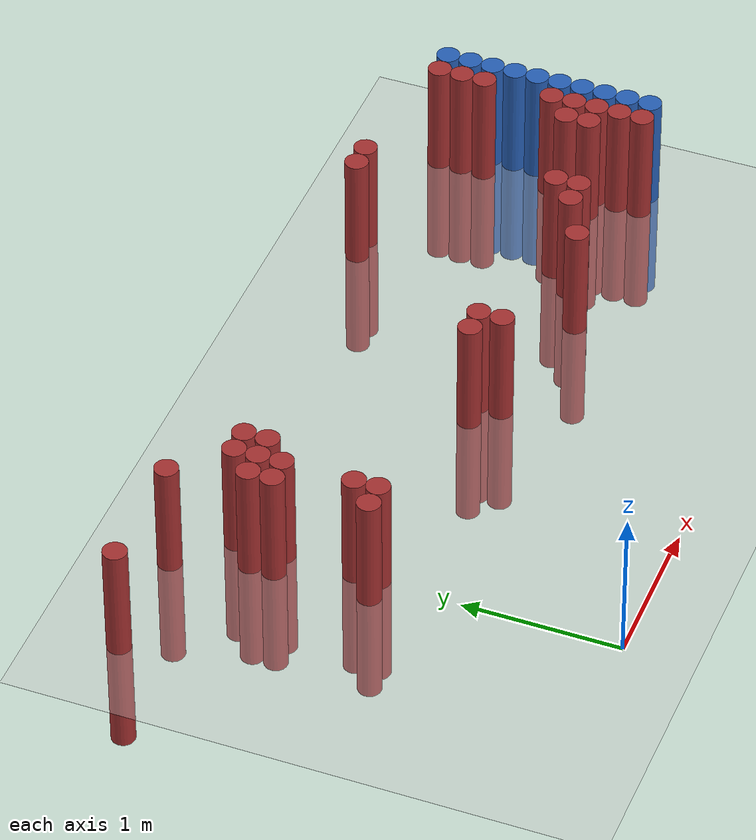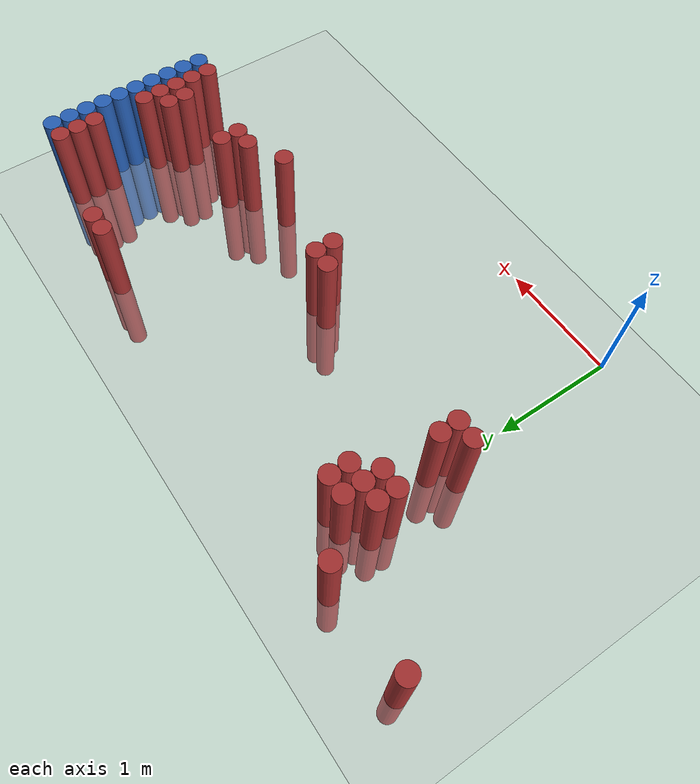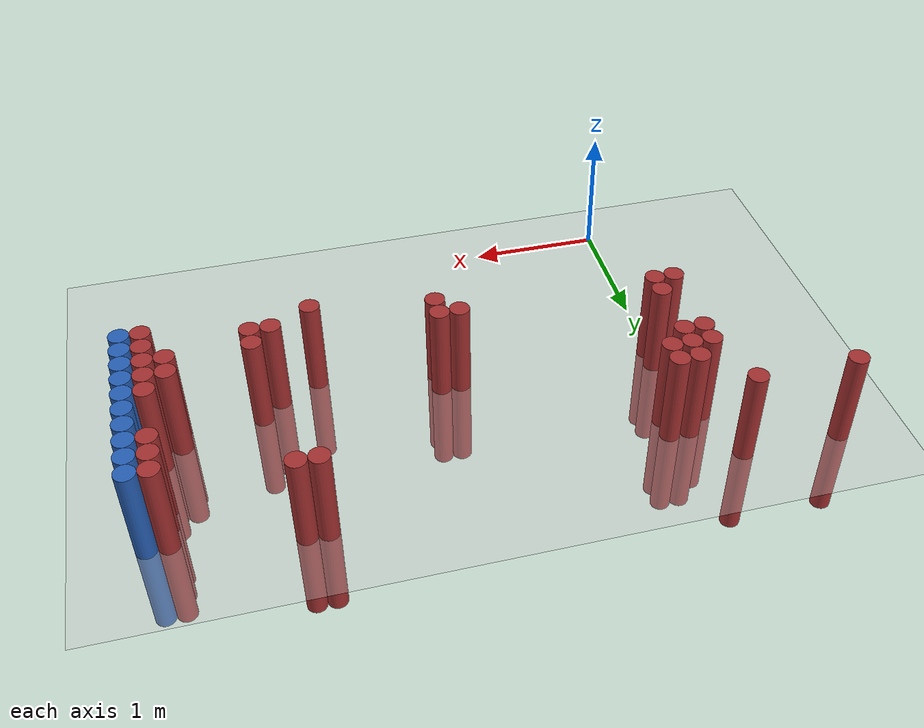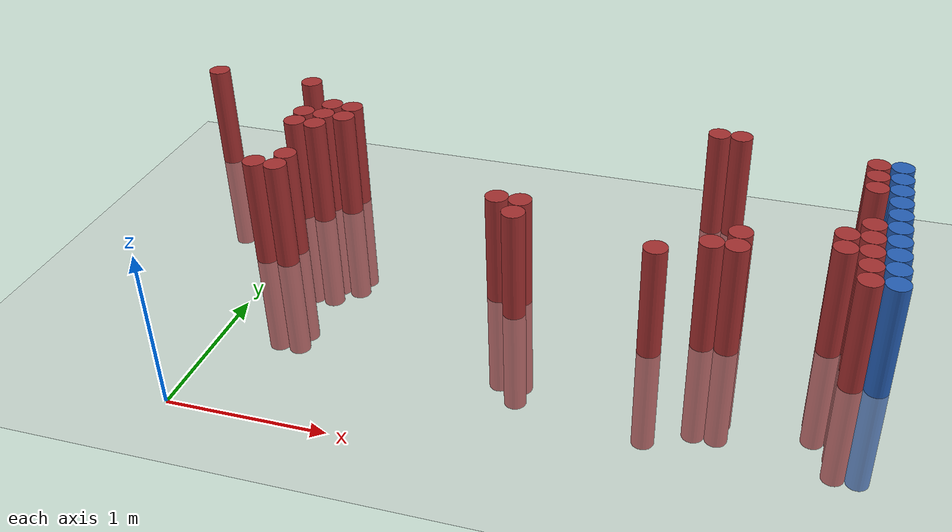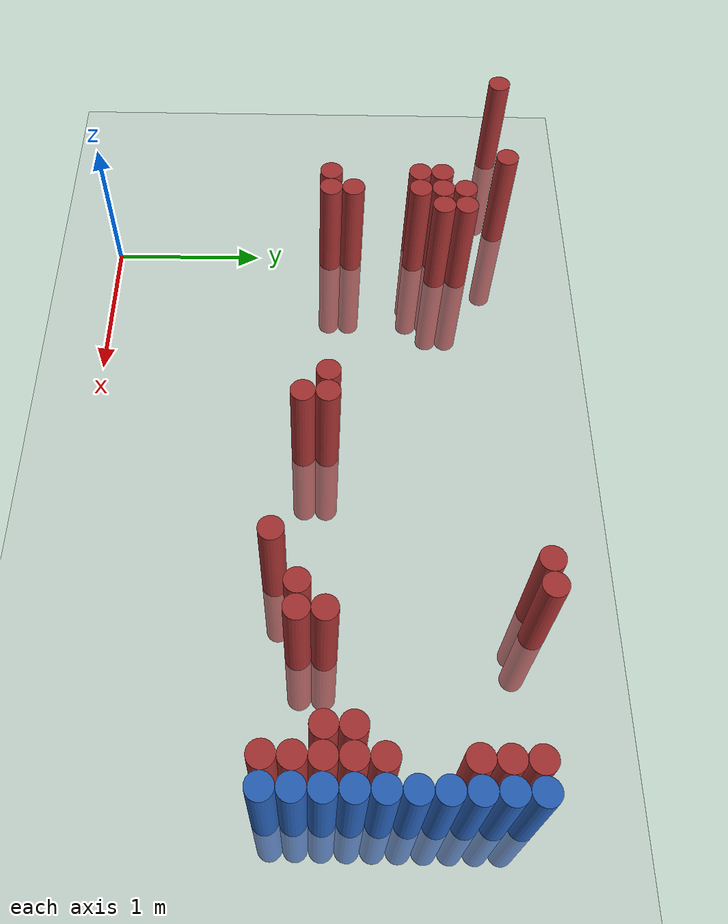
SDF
<sdf version="1.6">
 <world name="default">
  <model name="ground_plane">
   <static>1</static>
   <link name="link">
    <collision name="collision">
     <geometry><plane><normal>0 0 1</normal><size>100 100</size></plane></geometry>
     <surface><friction><ode><mu>100</mu><mu2>50</mu2></ode></friction></surface>
    </collision>
    <visual name="visual">
     <cast_shadows>0</cast_shadows>
     <geometry><plane><normal>0 0 1</normal><size>100 100</size></plane></geometry>
     <material>
      <script><uri>file://media/materials/scripts/gazebo.material</uri><name>Gazebo/Grey</name></script>
     </material>
    </visual>
   </link>
  </model>
  <model name="unit_cylinder_132">
   <static>1</static>
   <pose>3.925000 1.375000 0.000000 0.000000 0.000000 0.000000</pose>
   <link name="link">
    <inertial>
     <mass>1</mass>
     <inertia><ixx>0.145833</ixx><ixy>0</ixy><ixz>0</ixz><iyy>0.145833</iyy><iyz>0</iyz><izz>0.125</izz></inertia>
    </inertial>
    <collision name="collision">
     <geometry><cylinder><radius>0.075000</radius><length>1.5</length></cylinder></geometry>
    </collision>
    <visual name="visual">
     <geometry><cylinder><radius>0.075000</radius><length>1.5</length></cylinder></geometry>
     <material>
      <ambient>0.152000 0.379000 0.720000 1</ambient>
      <diffuse>0.152000 0.379000 0.720000 1</diffuse>
     </material>
     <material>
      <script><name>Gazebo/Grey</name><uri>file://media/materials/scripts/gazebo.material</uri></script>
     </material>
    </visual>
   </link>
  </model>
  <model name="unit_cylinder_134">
   <static>1</static>
   <pose>3.925000 1.525000 0.000000 0.000000 0.000000 0.000000</pose>
   <link name="link">
    <inertial>
     <mass>1</mass>
     <inertia><ixx>0.145833</ixx><ixy>0</ixy><ixz>0</ixz><iyy>0.145833</iyy><iyz>0</iyz><izz>0.125</izz></inertia>
    </inertial>
    <collision name="collision">
     <geometry><cylinder><radius>0.075000</radius><length>1.5</length></cylinder></geometry>
    </collision>
    <visual name="visual">
     <geometry><cylinder><radius>0.075000</radius><length>1.5</length></cylinder></geometry>
     <material>
      <ambient>0.152000 0.379000 0.720000 1</ambient>
      <diffuse>0.152000 0.379000 0.720000 1</diffuse>
     </material>
     <material>
      <script><name>Gazebo/Grey</name><uri>file://media/materials/scripts/gazebo.material</uri></script>
     </material>
    </visual>
   </link>
  </model>
  <model name="unit_cylinder_136">
   <static>1</static>
   <pose>3.925000 1.675000 0.000000 0.000000 0.000000 0.000000</pose>
   <link name="link">
    <inertial>
     <mass>1</mass>
     <inertia><ixx>0.145833</ixx><ixy>0</ixy><ixz>0</ixz><iyy>0.145833</iyy><iyz>0</iyz><izz>0.125</izz></inertia>
    </inertial>
    <collision name="collision">
     <geometry><cylinder><radius>0.075000</radius><length>1.5</length></cylinder></geometry>
    </collision>
    <visual name="visual">
     <geometry><cylinder><radius>0.075000</radius><length>1.5</length></cylinder></geometry>
     <material>
      <ambient>0.152000 0.379000 0.720000 1</ambient>
      <diffuse>0.152000 0.379000 0.720000 1</diffuse>
     </material>
     <material>
      <script><name>Gazebo/Grey</name><uri>file://media/materials/scripts/gazebo.material</uri></script>
     </material>
    </visual>
   </link>
  </model>
  <model name="unit_cylinder_138">
   <static>1</static>
   <pose>3.925000 1.825000 0.000000 0.000000 0.000000 0.000000</pose>
   <link name="link">
    <inertial>
     <mass>1</mass>
     <inertia><ixx>0.145833</ixx><ixy>0</ixy><ixz>0</ixz><iyy>0.145833</iyy><iyz>0</iyz><izz>0.125</izz></inertia>
    </inertial>
    <collision name="collision">
     <geometry><cylinder><radius>0.075000</radius><length>1.5</length></cylinder></geometry>
    </collision>
    <visual name="visual">
     <geometry><cylinder><radius>0.075000</radius><length>1.5</length></cylinder></geometry>
     <material>
      <ambient>0.152000 0.379000 0.720000 1</ambient>
      <diffuse>0.152000 0.379000 0.720000 1</diffuse>
     </material>
     <material>
      <script><name>Gazebo/Grey</name><uri>file://media/materials/scripts/gazebo.material</uri></script>
     </material>
    </visual>
   </link>
  </model>
  <model name="unit_cylinder_140">
   <static>1</static>
   <pose>3.925000 1.975000 0.000000 0.000000 0.000000 0.000000</pose>
   <link name="link">
    <inertial>
     <mass>1</mass>
     <inertia><ixx>0.145833</ixx><ixy>0</ixy><ixz>0</ixz><iyy>0.145833</iyy><iyz>0</iyz><izz>0.125</izz></inertia>
    </inertial>
    <collision name="collision">
     <geometry><cylinder><radius>0.075000</radius><length>1.5</length></cylinder></geometry>
    </collision>
    <visual name="visual">
     <geometry><cylinder><radius>0.075000</radius><length>1.5</length></cylinder></geometry>
     <material>
      <ambient>0.152000 0.379000 0.720000 1</ambient>
      <diffuse>0.152000 0.379000 0.720000 1</diffuse>
     </material>
     <material>
      <script><name>Gazebo/Grey</name><uri>file://media/materials/scripts/gazebo.material</uri></script>
     </material>
    </visual>
   </link>
  </model>
  <model name="unit_cylinder_142">
   <static>1</static>
   <pose>3.925000 2.125000 0.000000 0.000000 0.000000 0.000000</pose>
   <link name="link">
    <inertial>
     <mass>1</mass>
     <inertia><ixx>0.145833</ixx><ixy>0</ixy><ixz>0</ixz><iyy>0.145833</iyy><iyz>0</iyz><izz>0.125</izz></inertia>
    </inertial>
    <collision name="collision">
     <geometry><cylinder><radius>0.075000</radius><length>1.5</length></cylinder></geometry>
    </collision>
    <visual name="visual">
     <geometry><cylinder><radius>0.075000</radius><length>1.5</length></cylinder></geometry>
     <material>
      <ambient>0.152000 0.379000 0.720000 1</ambient>
      <diffuse>0.152000 0.379000 0.720000 1</diffuse>
     </material>
     <material>
      <script><name>Gazebo/Grey</name><uri>file://media/materials/scripts/gazebo.material</uri></script>
     </material>
    </visual>
   </link>
  </model>
  <model name="unit_cylinder_144">
   <static>1</static>
   <pose>3.925000 2.275000 0.000000 0.000000 0.000000 0.000000</pose>
   <link name="link">
    <inertial>
     <mass>1</mass>
     <inertia><ixx>0.145833</ixx><ixy>0</ixy><ixz>0</ixz><iyy>0.145833</iyy><iyz>0</iyz><izz>0.125</izz></inertia>
    </inertial>
    <collision name="collision">
     <geometry><cylinder><radius>0.075000</radius><length>1.5</length></cylinder></geometry>
    </collision>
    <visual name="visual">
     <geometry><cylinder><radius>0.075000</radius><length>1.5</length></cylinder></geometry>
     <material>
      <ambient>0.152000 0.379000 0.720000 1</ambient>
      <diffuse>0.152000 0.379000 0.720000 1</diffuse>
     </material>
     <material>
      <script><name>Gazebo/Grey</name><uri>file://media/materials/scripts/gazebo.material</uri></script>
     </material>
    </visual>
   </link>
  </model>
  <model name="unit_cylinder_146">
   <static>1</static>
   <pose>3.925000 2.425000 0.000000 0.000000 0.000000 0.000000</pose>
   <link name="link">
    <inertial>
     <mass>1</mass>
     <inertia><ixx>0.145833</ixx><ixy>0</ixy><ixz>0</ixz><iyy>0.145833</iyy><iyz>0</iyz><izz>0.125</izz></inertia>
    </inertial>
    <collision name="collision">
     <geometry><cylinder><radius>0.075000</radius><length>1.5</length></cylinder></geometry>
    </collision>
    <visual name="visual">
     <geometry><cylinder><radius>0.075000</radius><length>1.5</length></cylinder></geometry>
     <material>
      <ambient>0.152000 0.379000 0.720000 1</ambient>
      <diffuse>0.152000 0.379000 0.720000 1</diffuse>
     </material>
     <material>
      <script><name>Gazebo/Grey</name><uri>file://media/materials/scripts/gazebo.material</uri></script>
     </material>
    </visual>
   </link>
  </model>
  <model name="unit_cylinder_148">
   <static>1</static>
   <pose>3.925000 2.575000 0.000000 0.000000 0.000000 0.000000</pose>
   <link name="link">
    <inertial>
     <mass>1</mass>
     <inertia><ixx>0.145833</ixx><ixy>0</ixy><ixz>0</ixz><iyy>0.145833</iyy><iyz>0</iyz><izz>0.125</izz></inertia>
    </inertial>
    <collision name="collision">
     <geometry><cylinder><radius>0.075000</radius><length>1.5</length></cylinder></geometry>
    </collision>
    <visual name="visual">
     <geometry><cylinder><radius>0.075000</radius><length>1.5</length></cylinder></geometry>
     <material>
      <ambient>0.152000 0.379000 0.720000 1</ambient>
      <diffuse>0.152000 0.379000 0.720000 1</diffuse>
     </material>
     <material>
      <script><name>Gazebo/Grey</name><uri>file://media/materials/scripts/gazebo.material</uri></script>
     </material>
    </visual>
   </link>
  </model>
  <model name="unit_cylinder_325">
   <static>1</static>
   <pose>-1.025000 2.725000 0.000000 0.000000 0.000000 0.000000</pose>
   <link name="link">
    <inertial>
     <mass>1</mass>
     <inertia><ixx>0.145833</ixx><ixy>0</ixy><ixz>0</ixz><iyy>0.145833</iyy><iyz>0</iyz><izz>0.125</izz></inertia>
    </inertial>
    <collision name="collision">
     <geometry><cylinder><radius>0.075000</radius><length>1.5</length></cylinder></geometry>
    </collision>
    <visual name="visual">
     <geometry><cylinder><radius>0.075000</radius><length>1.5</length></cylinder></geometry>
     <material>
      <ambient>0.648000 0.192000 0.192000 1</ambient>
      <diffuse>0.648000 0.192000 0.192000 1</diffuse>
     </material>
     <material>
      <script><name>Gazebo/Grey</name><uri>file://media/materials/scripts/gazebo.material</uri></script>
     </material>
    </visual>
   </link>
  </model>
  <model name="unit_cylinder_334">
   <static>1</static>
   <pose>-0.275000 2.725000 0.000000 0.000000 0.000000 0.000000</pose>
   <link name="link">
    <inertial>
     <mass>1</mass>
     <inertia><ixx>0.145833</ixx><ixy>0</ixy><ixz>0</ixz><iyy>0.145833</iyy><iyz>0</iyz><izz>0.125</izz></inertia>
    </inertial>
    <collision name="collision">
     <geometry><cylinder><radius>0.075000</radius><length>1.5</length></cylinder></geometry>
    </collision>
    <visual name="visual">
     <geometry><cylinder><radius>0.075000</radius><length>1.5</length></cylinder></geometry>
     <material>
      <ambient>0.648000 0.192000 0.192000 1</ambient>
      <diffuse>0.648000 0.192000 0.192000 1</diffuse>
     </material>
     <material>
      <script><name>Gazebo/Grey</name><uri>file://media/materials/scripts/gazebo.material</uri></script>
     </material>
    </visual>
   </link>
  </model>
  <model name="unit_cylinder_342">
   <static>1</static>
   <pose>-0.125000 1.525000 0.000000 0.000000 0.000000 0.000000</pose>
   <link name="link">
    <inertial>
     <mass>1</mass>
     <inertia><ixx>0.145833</ixx><ixy>0</ixy><ixz>0</ixz><iyy>0.145833</iyy><iyz>0</iyz><izz>0.125</izz></inertia>
    </inertial>
    <collision name="collision">
     <geometry><cylinder><radius>0.075000</radius><length>1.5</length></cylinder></geometry>
    </collision>
    <visual name="visual">
     <geometry><cylinder><radius>0.075000</radius><length>1.5</length></cylinder></geometry>
     <material>
      <ambient>0.648000 0.192000 0.192000 1</ambient>
      <diffuse>0.648000 0.192000 0.192000 1</diffuse>
     </material>
     <material>
      <script><name>Gazebo/Grey</name><uri>file://media/materials/scripts/gazebo.material</uri></script>
     </material>
    </visual>
   </link>
  </model>
  <model name="unit_cylinder_343">
   <static>1</static>
   <pose>-0.125000 2.125000 0.000000 0.000000 0.000000 0.000000</pose>
   <link name="link">
    <inertial>
     <mass>1</mass>
     <inertia><ixx>0.145833</ixx><ixy>0</ixy><ixz>0</ixz><iyy>0.145833</iyy><iyz>0</iyz><izz>0.125</izz></inertia>
    </inertial>
    <collision name="collision">
     <geometry><cylinder><radius>0.075000</radius><length>1.5</length></cylinder></geometry>
    </collision>
    <visual name="visual">
     <geometry><cylinder><radius>0.075000</radius><length>1.5</length></cylinder></geometry>
     <material>
      <ambient>0.648000 0.192000 0.192000 1</ambient>
      <diffuse>0.648000 0.192000 0.192000 1</diffuse>
     </material>
     <material>
      <script><name>Gazebo/Grey</name><uri>file://media/materials/scripts/gazebo.material</uri></script>
     </material>
    </visual>
   </link>
  </model>
  <model name="unit_cylinder_344">
   <static>1</static>
   <pose>-0.125000 2.275000 0.000000 0.000000 0.000000 0.000000</pose>
   <link name="link">
    <inertial>
     <mass>1</mass>
     <inertia><ixx>0.145833</ixx><ixy>0</ixy><ixz>0</ixz><iyy>0.145833</iyy><iyz>0</iyz><izz>0.125</izz></inertia>
    </inertial>
    <collision name="collision">
     <geometry><cylinder><radius>0.075000</radius><length>1.5</length></cylinder></geometry>
    </collision>
    <visual name="visual">
     <geometry><cylinder><radius>0.075000</radius><length>1.5</length></cylinder></geometry>
     <material>
      <ambient>0.648000 0.192000 0.192000 1</ambient>
      <diffuse>0.648000 0.192000 0.192000 1</diffuse>
     </material>
     <material>
      <script><name>Gazebo/Grey</name><uri>file://media/materials/scripts/gazebo.material</uri></script>
     </material>
    </visual>
   </link>
  </model>
  <model name="unit_cylinder_350">
   <static>1</static>
   <pose>0.025000 1.525000 0.000000 0.000000 0.000000 0.000000</pose>
   <link name="link">
    <inertial>
     <mass>1</mass>
     <inertia><ixx>0.145833</ixx><ixy>0</ixy><ixz>0</ixz><iyy>0.145833</iyy><iyz>0</iyz><izz>0.125</izz></inertia>
    </inertial>
    <collision name="collision">
     <geometry><cylinder><radius>0.075000</radius><length>1.5</length></cylinder></geometry>
    </collision>
    <visual name="visual">
     <geometry><cylinder><radius>0.075000</radius><length>1.5</length></cylinder></geometry>
     <material>
      <ambient>0.648000 0.192000 0.192000 1</ambient>
      <diffuse>0.648000 0.192000 0.192000 1</diffuse>
     </material>
     <material>
      <script><name>Gazebo/Grey</name><uri>file://media/materials/scripts/gazebo.material</uri></script>
     </material>
    </visual>
   </link>
  </model>
  <model name="unit_cylinder_351">
   <static>1</static>
   <pose>0.025000 1.675000 0.000000 0.000000 0.000000 0.000000</pose>
   <link name="link">
    <inertial>
     <mass>1</mass>
     <inertia><ixx>0.145833</ixx><ixy>0</ixy><ixz>0</ixz><iyy>0.145833</iyy><iyz>0</iyz><izz>0.125</izz></inertia>
    </inertial>
    <collision name="collision">
     <geometry><cylinder><radius>0.075000</radius><length>1.5</length></cylinder></geometry>
    </collision>
    <visual name="visual">
     <geometry><cylinder><radius>0.075000</radius><length>1.5</length></cylinder></geometry>
     <material>
      <ambient>0.648000 0.192000 0.192000 1</ambient>
      <diffuse>0.648000 0.192000 0.192000 1</diffuse>
     </material>
     <material>
      <script><name>Gazebo/Grey</name><uri>file://media/materials/scripts/gazebo.material</uri></script>
     </material>
    </visual>
   </link>
  </model>
  <model name="unit_cylinder_352">
   <static>1</static>
   <pose>0.025000 2.125000 0.000000 0.000000 0.000000 0.000000</pose>
   <link name="link">
    <inertial>
     <mass>1</mass>
     <inertia><ixx>0.145833</ixx><ixy>0</ixy><ixz>0</ixz><iyy>0.145833</iyy><iyz>0</iyz><izz>0.125</izz></inertia>
    </inertial>
    <collision name="collision">
     <geometry><cylinder><radius>0.075000</radius><length>1.5</length></cylinder></geometry>
    </collision>
    <visual name="visual">
     <geometry><cylinder><radius>0.075000</radius><length>1.5</length></cylinder></geometry>
     <material>
      <ambient>0.648000 0.192000 0.192000 1</ambient>
      <diffuse>0.648000 0.192000 0.192000 1</diffuse>
     </material>
     <material>
      <script><name>Gazebo/Grey</name><uri>file://media/materials/scripts/gazebo.material</uri></script>
     </material>
    </visual>
   </link>
  </model>
  <model name="unit_cylinder_353">
   <static>1</static>
   <pose>0.025000 2.275000 0.000000 0.000000 0.000000 0.000000</pose>
   <link name="link">
    <inertial>
     <mass>1</mass>
     <inertia><ixx>0.145833</ixx><ixy>0</ixy><ixz>0</ixz><iyy>0.145833</iyy><iyz>0</iyz><izz>0.125</izz></inertia>
    </inertial>
    <collision name="collision">
     <geometry><cylinder><radius>0.075000</radius><length>1.5</length></cylinder></geometry>
    </collision>
    <visual name="visual">
     <geometry><cylinder><radius>0.075000</radius><length>1.5</length></cylinder></geometry>
     <material>
      <ambient>0.648000 0.192000 0.192000 1</ambient>
      <diffuse>0.648000 0.192000 0.192000 1</diffuse>
     </material>
     <material>
      <script><name>Gazebo/Grey</name><uri>file://media/materials/scripts/gazebo.material</uri></script>
     </material>
    </visual>
   </link>
  </model>
  <model name="unit_cylinder_354">
   <static>1</static>
   <pose>0.025000 2.425000 0.000000 0.000000 0.000000 0.000000</pose>
   <link name="link">
    <inertial>
     <mass>1</mass>
     <inertia><ixx>0.145833</ixx><ixy>0</ixy><ixz>0</ixz><iyy>0.145833</iyy><iyz>0</iyz><izz>0.125</izz></inertia>
    </inertial>
    <collision name="collision">
     <geometry><cylinder><radius>0.075000</radius><length>1.5</length></cylinder></geometry>
    </collision>
    <visual name="visual">
     <geometry><cylinder><radius>0.075000</radius><length>1.5</length></cylinder></geometry>
     <material>
      <ambient>0.648000 0.192000 0.192000 1</ambient>
      <diffuse>0.648000 0.192000 0.192000 1</diffuse>
     </material>
     <material>
      <script><name>Gazebo/Grey</name><uri>file://media/materials/scripts/gazebo.material</uri></script>
     </material>
    </visual>
   </link>
  </model>
  <model name="unit_cylinder_356">
   <static>1</static>
   <pose>0.175000 2.275000 0.000000 0.000000 0.000000 0.000000</pose>
   <link name="link">
    <inertial>
     <mass>1</mass>
     <inertia><ixx>0.145833</ixx><ixy>0</ixy><ixz>0</ixz><iyy>0.145833</iyy><iyz>0</iyz><izz>0.125</izz></inertia>
    </inertial>
    <collision name="collision">
     <geometry><cylinder><radius>0.075000</radius><length>1.5</length></cylinder></geometry>
    </collision>
    <visual name="visual">
     <geometry><cylinder><radius>0.075000</radius><length>1.5</length></cylinder></geometry>
     <material>
      <ambient>0.648000 0.192000 0.192000 1</ambient>
      <diffuse>0.648000 0.192000 0.192000 1</diffuse>
     </material>
     <material>
      <script><name>Gazebo/Grey</name><uri>file://media/materials/scripts/gazebo.material</uri></script>
     </material>
    </visual>
   </link>
  </model>
  <model name="unit_cylinder_357">
   <static>1</static>
   <pose>0.175000 2.425000 0.000000 0.000000 0.000000 0.000000</pose>
   <link name="link">
    <inertial>
     <mass>1</mass>
     <inertia><ixx>0.145833</ixx><ixy>0</ixy><ixz>0</ixz><iyy>0.145833</iyy><iyz>0</iyz><izz>0.125</izz></inertia>
    </inertial>
    <collision name="collision">
     <geometry><cylinder><radius>0.075000</radius><length>1.5</length></cylinder></geometry>
    </collision>
    <visual name="visual">
     <geometry><cylinder><radius>0.075000</radius><length>1.5</length></cylinder></geometry>
     <material>
      <ambient>0.648000 0.192000 0.192000 1</ambient>
      <diffuse>0.648000 0.192000 0.192000 1</diffuse>
     </material>
     <material>
      <script><name>Gazebo/Grey</name><uri>file://media/materials/scripts/gazebo.material</uri></script>
     </material>
    </visual>
   </link>
  </model>
  <model name="unit_cylinder_385">
   <static>1</static>
   <pose>1.525000 1.525000 0.000000 0.000000 0.000000 0.000000</pose>
   <link name="link">
    <inertial>
     <mass>1</mass>
     <inertia><ixx>0.145833</ixx><ixy>0</ixy><ixz>0</ixz><iyy>0.145833</iyy><iyz>0</iyz><izz>0.125</izz></inertia>
    </inertial>
    <collision name="collision">
     <geometry><cylinder><radius>0.075000</radius><length>1.5</length></cylinder></geometry>
    </collision>
    <visual name="visual">
     <geometry><cylinder><radius>0.075000</radius><length>1.5</length></cylinder></geometry>
     <material>
      <ambient>0.648000 0.192000 0.192000 1</ambient>
      <diffuse>0.648000 0.192000 0.192000 1</diffuse>
     </material>
     <material>
      <script><name>Gazebo/Grey</name><uri>file://media/materials/scripts/gazebo.material</uri></script>
     </material>
    </visual>
   </link>
  </model>
  <model name="unit_cylinder_387">
   <static>1</static>
   <pose>1.675000 1.375000 0.000000 0.000000 0.000000 0.000000</pose>
   <link name="link">
    <inertial>
     <mass>1</mass>
     <inertia><ixx>0.145833</ixx><ixy>0</ixy><ixz>0</ixz><iyy>0.145833</iyy><iyz>0</iyz><izz>0.125</izz></inertia>
    </inertial>
    <collision name="collision">
     <geometry><cylinder><radius>0.075000</radius><length>1.5</length></cylinder></geometry>
    </collision>
    <visual name="visual">
     <geometry><cylinder><radius>0.075000</radius><length>1.5</length></cylinder></geometry>
     <material>
      <ambient>0.648000 0.192000 0.192000 1</ambient>
      <diffuse>0.648000 0.192000 0.192000 1</diffuse>
     </material>
     <material>
      <script><name>Gazebo/Grey</name><uri>file://media/materials/scripts/gazebo.material</uri></script>
     </material>
    </visual>
   </link>
  </model>
  <model name="unit_cylinder_388">
   <static>1</static>
   <pose>1.675000 1.525000 0.000000 0.000000 0.000000 0.000000</pose>
   <link name="link">
    <inertial>
     <mass>1</mass>
     <inertia><ixx>0.145833</ixx><ixy>0</ixy><ixz>0</ixz><iyy>0.145833</iyy><iyz>0</iyz><izz>0.125</izz></inertia>
    </inertial>
    <collision name="collision">
     <geometry><cylinder><radius>0.075000</radius><length>1.5</length></cylinder></geometry>
    </collision>
    <visual name="visual">
     <geometry><cylinder><radius>0.075000</radius><length>1.5</length></cylinder></geometry>
     <material>
      <ambient>0.648000 0.192000 0.192000 1</ambient>
      <diffuse>0.648000 0.192000 0.192000 1</diffuse>
     </material>
     <material>
      <script><name>Gazebo/Grey</name><uri>file://media/materials/scripts/gazebo.material</uri></script>
     </material>
    </visual>
   </link>
  </model>
  <model name="unit_cylinder_401">
   <static>1</static>
   <pose>2.575000 1.225000 0.000000 0.000000 0.000000 0.000000</pose>
   <link name="link">
    <inertial>
     <mass>1</mass>
     <inertia><ixx>0.145833</ixx><ixy>0</ixy><ixz>0</ixz><iyy>0.145833</iyy><iyz>0</iyz><izz>0.125</izz></inertia>
    </inertial>
    <collision name="collision">
     <geometry><cylinder><radius>0.075000</radius><length>1.5</length></cylinder></geometry>
    </collision>
    <visual name="visual">
     <geometry><cylinder><radius>0.075000</radius><length>1.5</length></cylinder></geometry>
     <material>
      <ambient>0.648000 0.192000 0.192000 1</ambient>
      <diffuse>0.648000 0.192000 0.192000 1</diffuse>
     </material>
     <material>
      <script><name>Gazebo/Grey</name><uri>file://media/materials/scripts/gazebo.material</uri></script>
     </material>
    </visual>
   </link>
  </model>
  <model name="unit_cylinder_404">
   <static>1</static>
   <pose>2.725000 2.725000 0.000000 0.000000 0.000000 0.000000</pose>
   <link name="link">
    <inertial>
     <mass>1</mass>
     <inertia><ixx>0.145833</ixx><ixy>0</ixy><ixz>0</ixz><iyy>0.145833</iyy><iyz>0</iyz><izz>0.125</izz></inertia>
    </inertial>
    <collision name="collision">
     <geometry><cylinder><radius>0.075000</radius><length>1.5</length></cylinder></geometry>
    </collision>
    <visual name="visual">
     <geometry><cylinder><radius>0.075000</radius><length>1.5</length></cylinder></geometry>
     <material>
      <ambient>0.648000 0.192000 0.192000 1</ambient>
      <diffuse>0.648000 0.192000 0.192000 1</diffuse>
     </material>
     <material>
      <script><name>Gazebo/Grey</name><uri>file://media/materials/scripts/gazebo.material</uri></script>
     </material>
    </visual>
   </link>
  </model>
  <model name="unit_cylinder_408">
   <static>1</static>
   <pose>2.875000 1.375000 0.000000 0.000000 0.000000 0.000000</pose>
   <link name="link">
    <inertial>
     <mass>1</mass>
     <inertia><ixx>0.145833</ixx><ixy>0</ixy><ixz>0</ixz><iyy>0.145833</iyy><iyz>0</iyz><izz>0.125</izz></inertia>
    </inertial>
    <collision name="collision">
     <geometry><cylinder><radius>0.075000</radius><length>1.5</length></cylinder></geometry>
    </collision>
    <visual name="visual">
     <geometry><cylinder><radius>0.075000</radius><length>1.5</length></cylinder></geometry>
     <material>
      <ambient>0.648000 0.192000 0.192000 1</ambient>
      <diffuse>0.648000 0.192000 0.192000 1</diffuse>
     </material>
     <material>
      <script><name>Gazebo/Grey</name><uri>file://media/materials/scripts/gazebo.material</uri></script>
     </material>
    </visual>
   </link>
  </model>
  <model name="unit_cylinder_409">
   <static>1</static>
   <pose>2.875000 2.725000 0.000000 0.000000 0.000000 0.000000</pose>
   <link name="link">
    <inertial>
     <mass>1</mass>
     <inertia><ixx>0.145833</ixx><ixy>0</ixy><ixz>0</ixz><iyy>0.145833</iyy><iyz>0</iyz><izz>0.125</izz></inertia>
    </inertial>
    <collision name="collision">
     <geometry><cylinder><radius>0.075000</radius><length>1.5</length></cylinder></geometry>
    </collision>
    <visual name="visual">
     <geometry><cylinder><radius>0.075000</radius><length>1.5</length></cylinder></geometry>
     <material>
      <ambient>0.648000 0.192000 0.192000 1</ambient>
      <diffuse>0.648000 0.192000 0.192000 1</diffuse>
     </material>
     <material>
      <script><name>Gazebo/Grey</name><uri>file://media/materials/scripts/gazebo.material</uri></script>
     </material>
    </visual>
   </link>
  </model>
  <model name="unit_cylinder_412">
   <static>1</static>
   <pose>3.025000 1.375000 0.000000 0.000000 0.000000 0.000000</pose>
   <link name="link">
    <inertial>
     <mass>1</mass>
     <inertia><ixx>0.145833</ixx><ixy>0</ixy><ixz>0</ixz><iyy>0.145833</iyy><iyz>0</iyz><izz>0.125</izz></inertia>
    </inertial>
    <collision name="collision">
     <geometry><cylinder><radius>0.075000</radius><length>1.5</length></cylinder></geometry>
    </collision>
    <visual name="visual">
     <geometry><cylinder><radius>0.075000</radius><length>1.5</length></cylinder></geometry>
     <material>
      <ambient>0.648000 0.192000 0.192000 1</ambient>
      <diffuse>0.648000 0.192000 0.192000 1</diffuse>
     </material>
     <material>
      <script><name>Gazebo/Grey</name><uri>file://media/materials/scripts/gazebo.material</uri></script>
     </material>
    </visual>
   </link>
  </model>
  <model name="unit_cylinder_413">
   <static>1</static>
   <pose>3.025000 1.525000 0.000000 0.000000 0.000000 0.000000</pose>
   <link name="link">
    <inertial>
     <mass>1</mass>
     <inertia><ixx>0.145833</ixx><ixy>0</ixy><ixz>0</ixz><iyy>0.145833</iyy><iyz>0</iyz><izz>0.125</izz></inertia>
    </inertial>
    <collision name="collision">
     <geometry><cylinder><radius>0.075000</radius><length>1.5</length></cylinder></geometry>
    </collision>
    <visual name="visual">
     <geometry><cylinder><radius>0.075000</radius><length>1.5</length></cylinder></geometry>
     <material>
      <ambient>0.648000 0.192000 0.192000 1</ambient>
      <diffuse>0.648000 0.192000 0.192000 1</diffuse>
     </material>
     <material>
      <script><name>Gazebo/Grey</name><uri>file://media/materials/scripts/gazebo.material</uri></script>
     </material>
    </visual>
   </link>
  </model>
  <model name="unit_cylinder_421">
   <static>1</static>
   <pose>3.625000 1.525000 0.000000 0.000000 0.000000 0.000000</pose>
   <link name="link">
    <inertial>
     <mass>1</mass>
     <inertia><ixx>0.145833</ixx><ixy>0</ixy><ixz>0</ixz><iyy>0.145833</iyy><iyz>0</iyz><izz>0.125</izz></inertia>
    </inertial>
    <collision name="collision">
     <geometry><cylinder><radius>0.075000</radius><length>1.5</length></cylinder></geometry>
    </collision>
    <visual name="visual">
     <geometry><cylinder><radius>0.075000</radius><length>1.5</length></cylinder></geometry>
     <material>
      <ambient>0.648000 0.192000 0.192000 1</ambient>
      <diffuse>0.648000 0.192000 0.192000 1</diffuse>
     </material>
     <material>
      <script><name>Gazebo/Grey</name><uri>file://media/materials/scripts/gazebo.material</uri></script>
     </material>
    </visual>
   </link>
  </model>
  <model name="unit_cylinder_422">
   <static>1</static>
   <pose>3.625000 1.675000 0.000000 0.000000 0.000000 0.000000</pose>
   <link name="link">
    <inertial>
     <mass>1</mass>
     <inertia><ixx>0.145833</ixx><ixy>0</ixy><ixz>0</ixz><iyy>0.145833</iyy><iyz>0</iyz><izz>0.125</izz></inertia>
    </inertial>
    <collision name="collision">
     <geometry><cylinder><radius>0.075000</radius><length>1.5</length></cylinder></geometry>
    </collision>
    <visual name="visual">
     <geometry><cylinder><radius>0.075000</radius><length>1.5</length></cylinder></geometry>
     <material>
      <ambient>0.648000 0.192000 0.192000 1</ambient>
      <diffuse>0.648000 0.192000 0.192000 1</diffuse>
     </material>
     <material>
      <script><name>Gazebo/Grey</name><uri>file://media/materials/scripts/gazebo.material</uri></script>
     </material>
    </visual>
   </link>
  </model>
  <model name="unit_cylinder_434">
   <static>1</static>
   <pose>3.775000 1.225000 0.000000 0.000000 0.000000 0.000000</pose>
   <link name="link">
    <inertial>
     <mass>1</mass>
     <inertia><ixx>0.145833</ixx><ixy>0</ixy><ixz>0</ixz><iyy>0.145833</iyy><iyz>0</iyz><izz>0.125</izz></inertia>
    </inertial>
    <collision name="collision">
     <geometry><cylinder><radius>0.075000</radius><length>1.5</length></cylinder></geometry>
    </collision>
    <visual name="visual">
     <geometry><cylinder><radius>0.075000</radius><length>1.5</length></cylinder></geometry>
     <material>
      <ambient>0.648000 0.192000 0.192000 1</ambient>
      <diffuse>0.648000 0.192000 0.192000 1</diffuse>
     </material>
     <material>
      <script><name>Gazebo/Grey</name><uri>file://media/materials/scripts/gazebo.material</uri></script>
     </material>
    </visual>
   </link>
  </model>
  <model name="unit_cylinder_435">
   <static>1</static>
   <pose>3.775000 1.375000 0.000000 0.000000 0.000000 0.000000</pose>
   <link name="link">
    <inertial>
     <mass>1</mass>
     <inertia><ixx>0.145833</ixx><ixy>0</ixy><ixz>0</ixz><iyy>0.145833</iyy><iyz>0</iyz><izz>0.125</izz></inertia>
    </inertial>
    <collision name="collision">
     <geometry><cylinder><radius>0.075000</radius><length>1.5</length></cylinder></geometry>
    </collision>
    <visual name="visual">
     <geometry><cylinder><radius>0.075000</radius><length>1.5</length></cylinder></geometry>
     <material>
      <ambient>0.648000 0.192000 0.192000 1</ambient>
      <diffuse>0.648000 0.192000 0.192000 1</diffuse>
     </material>
     <material>
      <script><name>Gazebo/Grey</name><uri>file://media/materials/scripts/gazebo.material</uri></script>
     </material>
    </visual>
   </link>
  </model>
  <model name="unit_cylinder_436">
   <static>1</static>
   <pose>3.775000 1.525000 0.000000 0.000000 0.000000 0.000000</pose>
   <link name="link">
    <inertial>
     <mass>1</mass>
     <inertia><ixx>0.145833</ixx><ixy>0</ixy><ixz>0</ixz><iyy>0.145833</iyy><iyz>0</iyz><izz>0.125</izz></inertia>
    </inertial>
    <collision name="collision">
     <geometry><cylinder><radius>0.075000</radius><length>1.5</length></cylinder></geometry>
    </collision>
    <visual name="visual">
     <geometry><cylinder><radius>0.075000</radius><length>1.5</length></cylinder></geometry>
     <material>
      <ambient>0.648000 0.192000 0.192000 1</ambient>
      <diffuse>0.648000 0.192000 0.192000 1</diffuse>
     </material>
     <material>
      <script><name>Gazebo/Grey</name><uri>file://media/materials/scripts/gazebo.material</uri></script>
     </material>
    </visual>
   </link>
  </model>
  <model name="unit_cylinder_437">
   <static>1</static>
   <pose>3.775000 1.675000 0.000000 0.000000 0.000000 0.000000</pose>
   <link name="link">
    <inertial>
     <mass>1</mass>
     <inertia><ixx>0.145833</ixx><ixy>0</ixy><ixz>0</ixz><iyy>0.145833</iyy><iyz>0</iyz><izz>0.125</izz></inertia>
    </inertial>
    <collision name="collision">
     <geometry><cylinder><radius>0.075000</radius><length>1.5</length></cylinder></geometry>
    </collision>
    <visual name="visual">
     <geometry><cylinder><radius>0.075000</radius><length>1.5</length></cylinder></geometry>
     <material>
      <ambient>0.648000 0.192000 0.192000 1</ambient>
      <diffuse>0.648000 0.192000 0.192000 1</diffuse>
     </material>
     <material>
      <script><name>Gazebo/Grey</name><uri>file://media/materials/scripts/gazebo.material</uri></script>
     </material>
    </visual>
   </link>
  </model>
  <model name="unit_cylinder_438">
   <static>1</static>
   <pose>3.775000 1.825000 0.000000 0.000000 0.000000 0.000000</pose>
   <link name="link">
    <inertial>
     <mass>1</mass>
     <inertia><ixx>0.145833</ixx><ixy>0</ixy><ixz>0</ixz><iyy>0.145833</iyy><iyz>0</iyz><izz>0.125</izz></inertia>
    </inertial>
    <collision name="collision">
     <geometry><cylinder><radius>0.075000</radius><length>1.5</length></cylinder></geometry>
    </collision>
    <visual name="visual">
     <geometry><cylinder><radius>0.075000</radius><length>1.5</length></cylinder></geometry>
     <material>
      <ambient>0.648000 0.192000 0.192000 1</ambient>
      <diffuse>0.648000 0.192000 0.192000 1</diffuse>
     </material>
     <material>
      <script><name>Gazebo/Grey</name><uri>file://media/materials/scripts/gazebo.material</uri></script>
     </material>
    </visual>
   </link>
  </model>
  <model name="unit_cylinder_439">
   <static>1</static>
   <pose>3.775000 2.275000 0.000000 0.000000 0.000000 0.000000</pose>
   <link name="link">
    <inertial>
     <mass>1</mass>
     <inertia><ixx>0.145833</ixx><ixy>0</ixy><ixz>0</ixz><iyy>0.145833</iyy><iyz>0</iyz><izz>0.125</izz></inertia>
    </inertial>
    <collision name="collision">
     <geometry><cylinder><radius>0.075000</radius><length>1.5</length></cylinder></geometry>
    </collision>
    <visual name="visual">
     <geometry><cylinder><radius>0.075000</radius><length>1.5</length></cylinder></geometry>
     <material>
      <ambient>0.648000 0.192000 0.192000 1</ambient>
      <diffuse>0.648000 0.192000 0.192000 1</diffuse>
     </material>
     <material>
      <script><name>Gazebo/Grey</name><uri>file://media/materials/scripts/gazebo.material</uri></script>
     </material>
    </visual>
   </link>
  </model>
  <model name="unit_cylinder_440">
   <static>1</static>
   <pose>3.775000 2.425000 0.000000 0.000000 0.000000 0.000000</pose>
   <link name="link">
    <inertial>
     <mass>1</mass>
     <inertia><ixx>0.145833</ixx><ixy>0</ixy><ixz>0</ixz><iyy>0.145833</iyy><iyz>0</iyz><izz>0.125</izz></inertia>
    </inertial>
    <collision name="collision">
     <geometry><cylinder><radius>0.075000</radius><length>1.5</length></cylinder></geometry>
    </collision>
    <visual name="visual">
     <geometry><cylinder><radius>0.075000</radius><length>1.5</length></cylinder></geometry>
     <material>
      <ambient>0.648000 0.192000 0.192000 1</ambient>
      <diffuse>0.648000 0.192000 0.192000 1</diffuse>
     </material>
     <material>
      <script><name>Gazebo/Grey</name><uri>file://media/materials/scripts/gazebo.material</uri></script>
     </material>
    </visual>
   </link>
  </model>
  <model name="unit_cylinder_441">
   <static>1</static>
   <pose>3.775000 2.575000 0.000000 0.000000 0.000000 0.000000</pose>
   <link name="link">
    <inertial>
     <mass>1</mass>
     <inertia><ixx>0.145833</ixx><ixy>0</ixy><ixz>0</ixz><iyy>0.145833</iyy><iyz>0</iyz><izz>0.125</izz></inertia>
    </inertial>
    <collision name="collision">
     <geometry><cylinder><radius>0.075000</radius><length>1.5</length></cylinder></geometry>
    </collision>
    <visual name="visual">
     <geometry><cylinder><radius>0.075000</radius><length>1.5</length></cylinder></geometry>
     <material>
      <ambient>0.648000 0.192000 0.192000 1</ambient>
      <diffuse>0.648000 0.192000 0.192000 1</diffuse>
     </material>
     <material>
      <script><name>Gazebo/Grey</name><uri>file://media/materials/scripts/gazebo.material</uri></script>
     </material>
    </visual>
   </link>
  </model>
  <model name="unit_cylinder_475">
   <static>1</static>
   <pose>3.925000 1.225000 0.000000 0.000000 0.000000 0.000000</pose>
   <link name="link">
    <inertial>
     <mass>1</mass>
     <inertia><ixx>0.145833</ixx><ixy>0</ixy><ixz>0</ixz><iyy>0.145833</iyy><iyz>0</iyz><izz>0.125</izz></inertia>
    </inertial>
    <collision name="collision">
     <geometry><cylinder><radius>0.075000</radius><length>1.5</length></cylinder></geometry>
    </collision>
    <visual name="visual">
     <geometry><cylinder><radius>0.075000</radius><length>1.5</length></cylinder></geometry>
     <material>
      <ambient>0.152000 0.379000 0.720000 1</ambient>
      <diffuse>0.152000 0.379000 0.720000 1</diffuse>
     </material>
     <material>
      <script><name>Gazebo/Grey</name><uri>file://media/materials/scripts/gazebo.material</uri></script>
     </material>
    </visual>
   </link>
  </model>
  <model name="unit_cylinder_476">
   <static>1</static>
   <pose>3.925000 1.375000 0.000000 0.000000 0.000000 0.000000</pose>
   <link name="link">
    <inertial>
     <mass>1</mass>
     <inertia><ixx>0.145833</ixx><ixy>0</ixy><ixz>0</ixz><iyy>0.145833</iyy><iyz>0</iyz><izz>0.125</izz></inertia>
    </inertial>
    <collision name="collision">
     <geometry><cylinder><radius>0.075000</radius><length>1.5</length></cylinder></geometry>
    </collision>
    <visual name="visual">
     <geometry><cylinder><radius>0.075000</radius><length>1.5</length></cylinder></geometry>
     <material>
      <ambient>0.152000 0.379000 0.720000 1</ambient>
      <diffuse>0.152000 0.379000 0.720000 1</diffuse>
     </material>
     <material>
      <script><name>Gazebo/Grey</name><uri>file://media/materials/scripts/gazebo.material</uri></script>
     </material>
    </visual>
   </link>
  </model>
  <model name="unit_cylinder_477">
   <static>1</static>
   <pose>3.925000 1.525000 0.000000 0.000000 0.000000 0.000000</pose>
   <link name="link">
    <inertial>
     <mass>1</mass>
     <inertia><ixx>0.145833</ixx><ixy>0</ixy><ixz>0</ixz><iyy>0.145833</iyy><iyz>0</iyz><izz>0.125</izz></inertia>
    </inertial>
    <collision name="collision">
     <geometry><cylinder><radius>0.075000</radius><length>1.5</length></cylinder></geometry>
    </collision>
    <visual name="visual">
     <geometry><cylinder><radius>0.075000</radius><length>1.5</length></cylinder></geometry>
     <material>
      <ambient>0.152000 0.379000 0.720000 1</ambient>
      <diffuse>0.152000 0.379000 0.720000 1</diffuse>
     </material>
     <material>
      <script><name>Gazebo/Grey</name><uri>file://media/materials/scripts/gazebo.material</uri></script>
     </material>
    </visual>
   </link>
  </model>
  <model name="unit_cylinder_478">
   <static>1</static>
   <pose>3.925000 1.675000 0.000000 0.000000 0.000000 0.000000</pose>
   <link name="link">
    <inertial>
     <mass>1</mass>
     <inertia><ixx>0.145833</ixx><ixy>0</ixy><ixz>0</ixz><iyy>0.145833</iyy><iyz>0</iyz><izz>0.125</izz></inertia>
    </inertial>
    <collision name="collision">
     <geometry><cylinder><radius>0.075000</radius><length>1.5</length></cylinder></geometry>
    </collision>
    <visual name="visual">
     <geometry><cylinder><radius>0.075000</radius><length>1.5</length></cylinder></geometry>
     <material>
      <ambient>0.152000 0.379000 0.720000 1</ambient>
      <diffuse>0.152000 0.379000 0.720000 1</diffuse>
     </material>
     <material>
      <script><name>Gazebo/Grey</name><uri>file://media/materials/scripts/gazebo.material</uri></script>
     </material>
    </visual>
   </link>
  </model>
  <model name="unit_cylinder_479">
   <static>1</static>
   <pose>3.925000 1.825000 0.000000 0.000000 0.000000 0.000000</pose>
   <link name="link">
    <inertial>
     <mass>1</mass>
     <inertia><ixx>0.145833</ixx><ixy>0</ixy><ixz>0</ixz><iyy>0.145833</iyy><iyz>0</iyz><izz>0.125</izz></inertia>
    </inertial>
    <collision name="collision">
     <geometry><cylinder><radius>0.075000</radius><length>1.5</length></cylinder></geometry>
    </collision>
    <visual name="visual">
     <geometry><cylinder><radius>0.075000</radius><length>1.5</length></cylinder></geometry>
     <material>
      <ambient>0.152000 0.379000 0.720000 1</ambient>
      <diffuse>0.152000 0.379000 0.720000 1</diffuse>
     </material>
     <material>
      <script><name>Gazebo/Grey</name><uri>file://media/materials/scripts/gazebo.material</uri></script>
     </material>
    </visual>
   </link>
  </model>
  <model name="unit_cylinder_480">
   <static>1</static>
   <pose>3.925000 1.975000 0.000000 0.000000 0.000000 0.000000</pose>
   <link name="link">
    <inertial>
     <mass>1</mass>
     <inertia><ixx>0.145833</ixx><ixy>0</ixy><ixz>0</ixz><iyy>0.145833</iyy><iyz>0</iyz><izz>0.125</izz></inertia>
    </inertial>
    <collision name="collision">
     <geometry><cylinder><radius>0.075000</radius><length>1.5</length></cylinder></geometry>
    </collision>
    <visual name="visual">
     <geometry><cylinder><radius>0.075000</radius><length>1.5</length></cylinder></geometry>
     <material>
      <ambient>0.152000 0.379000 0.720000 1</ambient>
      <diffuse>0.152000 0.379000 0.720000 1</diffuse>
     </material>
     <material>
      <script><name>Gazebo/Grey</name><uri>file://media/materials/scripts/gazebo.material</uri></script>
     </material>
    </visual>
   </link>
  </model>
  <model name="unit_cylinder_481">
   <static>1</static>
   <pose>3.925000 2.125000 0.000000 0.000000 0.000000 0.000000</pose>
   <link name="link">
    <inertial>
     <mass>1</mass>
     <inertia><ixx>0.145833</ixx><ixy>0</ixy><ixz>0</ixz><iyy>0.145833</iyy><iyz>0</iyz><izz>0.125</izz></inertia>
    </inertial>
    <collision name="collision">
     <geometry><cylinder><radius>0.075000</radius><length>1.5</length></cylinder></geometry>
    </collision>
    <visual name="visual">
     <geometry><cylinder><radius>0.075000</radius><length>1.5</length></cylinder></geometry>
     <material>
      <ambient>0.152000 0.379000 0.720000 1</ambient>
      <diffuse>0.152000 0.379000 0.720000 1</diffuse>
     </material>
     <material>
      <script><name>Gazebo/Grey</name><uri>file://media/materials/scripts/gazebo.material</uri></script>
     </material>
    </visual>
   </link>
  </model>
  <model name="unit_cylinder_482">
   <static>1</static>
   <pose>3.925000 2.275000 0.000000 0.000000 0.000000 0.000000</pose>
   <link name="link">
    <inertial>
     <mass>1</mass>
     <inertia><ixx>0.145833</ixx><ixy>0</ixy><ixz>0</ixz><iyy>0.145833</iyy><iyz>0</iyz><izz>0.125</izz></inertia>
    </inertial>
    <collision name="collision">
     <geometry><cylinder><radius>0.075000</radius><length>1.5</length></cylinder></geometry>
    </collision>
    <visual name="visual">
     <geometry><cylinder><radius>0.075000</radius><length>1.5</length></cylinder></geometry>
     <material>
      <ambient>0.152000 0.379000 0.720000 1</ambient>
      <diffuse>0.152000 0.379000 0.720000 1</diffuse>
     </material>
     <material>
      <script><name>Gazebo/Grey</name><uri>file://media/materials/scripts/gazebo.material</uri></script>
     </material>
    </visual>
   </link>
  </model>
  <model name="unit_cylinder_483">
   <static>1</static>
   <pose>3.925000 2.425000 0.000000 0.000000 0.000000 0.000000</pose>
   <link name="link">
    <inertial>
     <mass>1</mass>
     <inertia><ixx>0.145833</ixx><ixy>0</ixy><ixz>0</ixz><iyy>0.145833</iyy><iyz>0</iyz><izz>0.125</izz></inertia>
    </inertial>
    <collision name="collision">
     <geometry><cylinder><radius>0.075000</radius><length>1.5</length></cylinder></geometry>
    </collision>
    <visual name="visual">
     <geometry><cylinder><radius>0.075000</radius><length>1.5</length></cylinder></geometry>
     <material>
      <ambient>0.152000 0.379000 0.720000 1</ambient>
      <diffuse>0.152000 0.379000 0.720000 1</diffuse>
     </material>
     <material>
      <script><name>Gazebo/Grey</name><uri>file://media/materials/scripts/gazebo.material</uri></script>
     </material>
    </visual>
   </link>
  </model>
  <model name="unit_cylinder_484">
   <static>1</static>
   <pose>3.925000 2.575000 0.000000 0.000000 0.000000 0.000000</pose>
   <link name="link">
    <inertial>
     <mass>1</mass>
     <inertia><ixx>0.145833</ixx><ixy>0</ixy><ixz>0</ixz><iyy>0.145833</iyy><iyz>0</iyz><izz>0.125</izz></inertia>
    </inertial>
    <collision name="collision">
     <geometry><cylinder><radius>0.075000</radius><length>1.5</length></cylinder></geometry>
    </collision>
    <visual name="visual">
     <geometry><cylinder><radius>0.075000</radius><length>1.5</length></cylinder></geometry>
     <material>
      <ambient>0.152000 0.379000 0.720000 1</ambient>
      <diffuse>0.152000 0.379000 0.720000 1</diffuse>
     </material>
     <material>
      <script><name>Gazebo/Grey</name><uri>file://media/materials/scripts/gazebo.material</uri></script>
     </material>
    </visual>
   </link>
  </model>
 </world>
</sdf>
